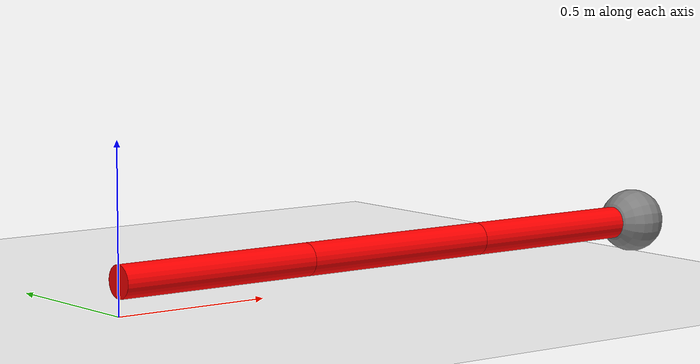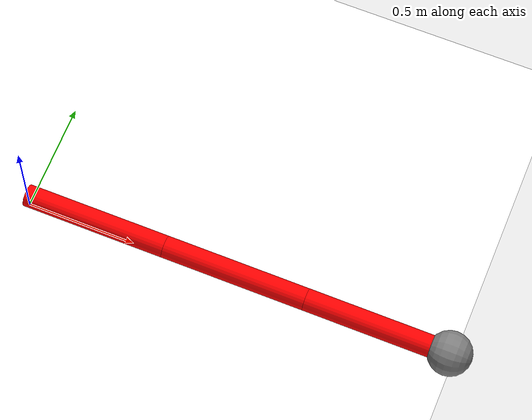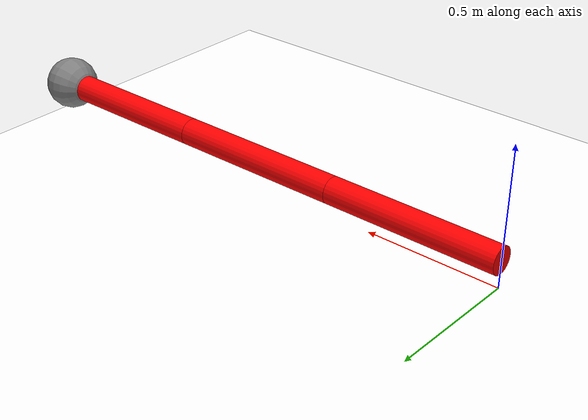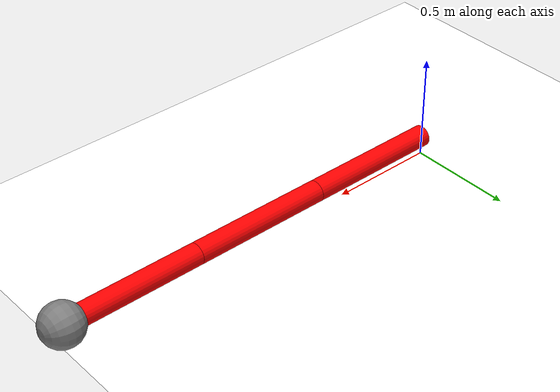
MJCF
<mujoco>
	<asset>
		<material name="red"   rgba="1 0 0 1"/>
		<material name="green" rgba="0 1 0 1"/>
		<material name="blue"  rgba="0 0 1 1"/>
		<material name="white" rgba="1 1 1 1"/>
		<material name="gray"  rgba=".5 .5 .5 1"/>
	</asset>

    <option collision="predefined"/>

    <worldbody>
        <light diffuse=".5 .5 .5" pos="0 0 10" dir="0 0 -1"/>
        <geom type="plane" size="2 2 0.1" rgba="1 1 1 1"/>

        <body name="edge 0" pos="0.33 0 0.1" euler="0 90 0">
            <joint name="joint 0" type="hinge" axis="-1 0 0" pos="0 0 -0.33"/>
            <geom name="geom edge 0" type="cylinder" size="0.05 0.33" material="red"/>
            <body name="edge 1" pos="0 0 0.66" euler="0 0 0">
                <joint name="joint 1" type="hinge" axis="-1 0 0" pos="0 0 -0.33"/>
                <geom name="geom edge 1" type="cylinder" size="0.05 0.33" material="red"/>
                <body name="edge 2" pos="0 0 0.66" euler="0 0 0">
                    <joint name="joint 2" type="hinge" axis="-1 0 0" pos="0 0 -0.33"/>
                    <geom name="geom edge 2" type="cylinder" size="0.05 0.33" material="red"/>
                    <site name="tip" size="0.1" pos="0 0 0.33"/>
                </body>
            </body>
        </body>

        <body name="edge 0 shade" pos="0.33 0 0.1" euler="0 90 0">
            <joint name="joint 0 shade" type="hinge" axis="-1 0 0" pos="0 0 -0.33"/>
            <geom name="geom edge 0 shade" type="cylinder" size="0.05 0.33" material="green"/>
            <body name="edge 1 shade" pos="0 0 0.66" euler="0 0 0">
                <joint name="joint 1 shade" type="hinge" axis="-1 0 0" pos="0 0 -0.33"/>
                <geom name="geom edge 1 shade" type="cylinder" size="0.05 0.33" material="green"/>
                <body name="edge 2 shade" pos="0 0 0.66" euler="0 0 0">
                    <joint name="joint 2 shade" type="hinge" axis="-1 0 0" pos="0 0 -0.33"/>
                    <geom name="geom edge 2 shade" type="cylinder" size="0.05 0.33" material="green"/>
                </body>
            </body>
        </body>

    </worldbody>

    <contact>
    </contact>

    <sensor>
      <framepos objtype="site" objname="tip"/>
    </sensor>
</mujoco>
